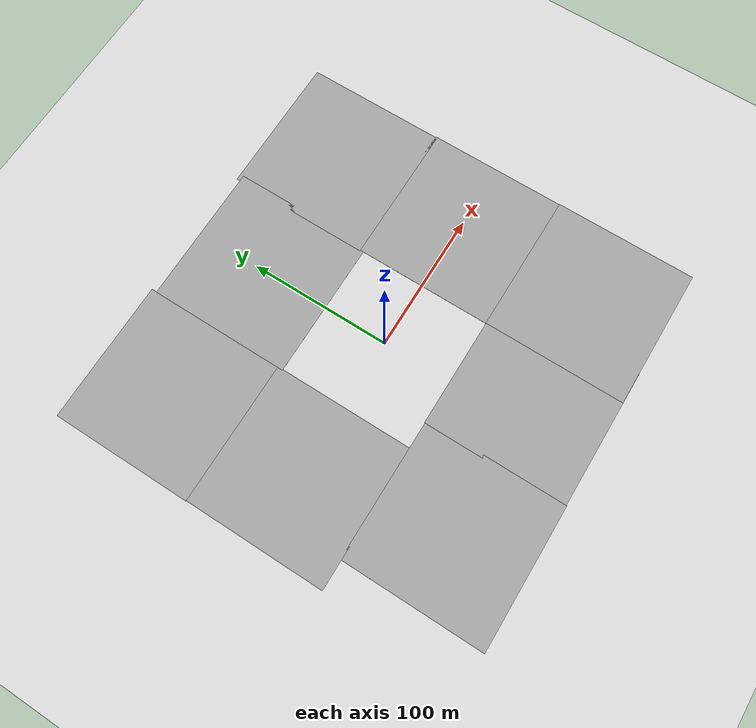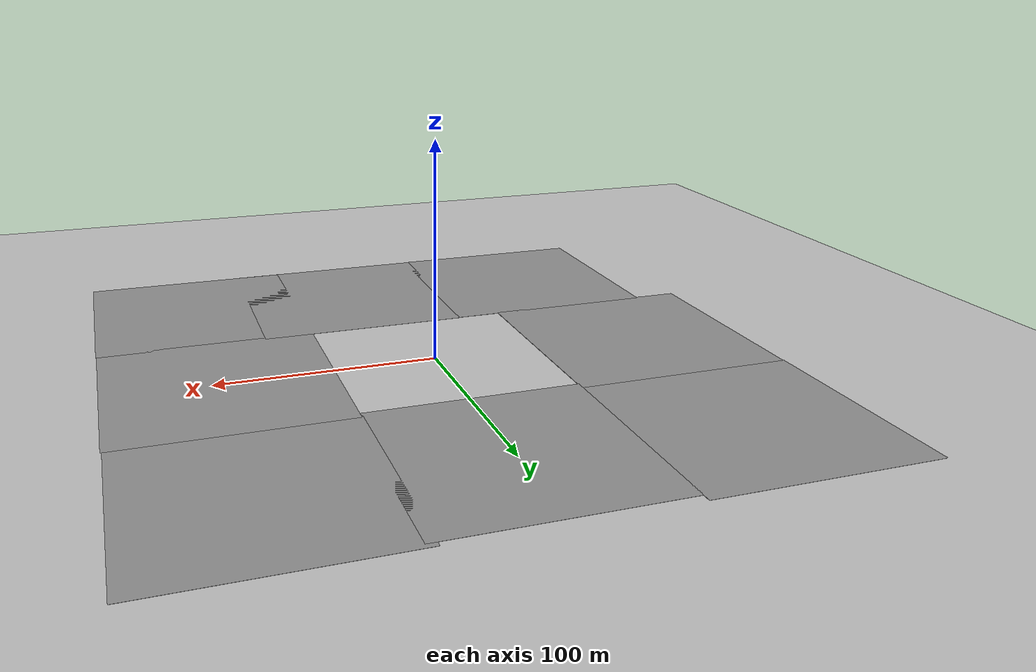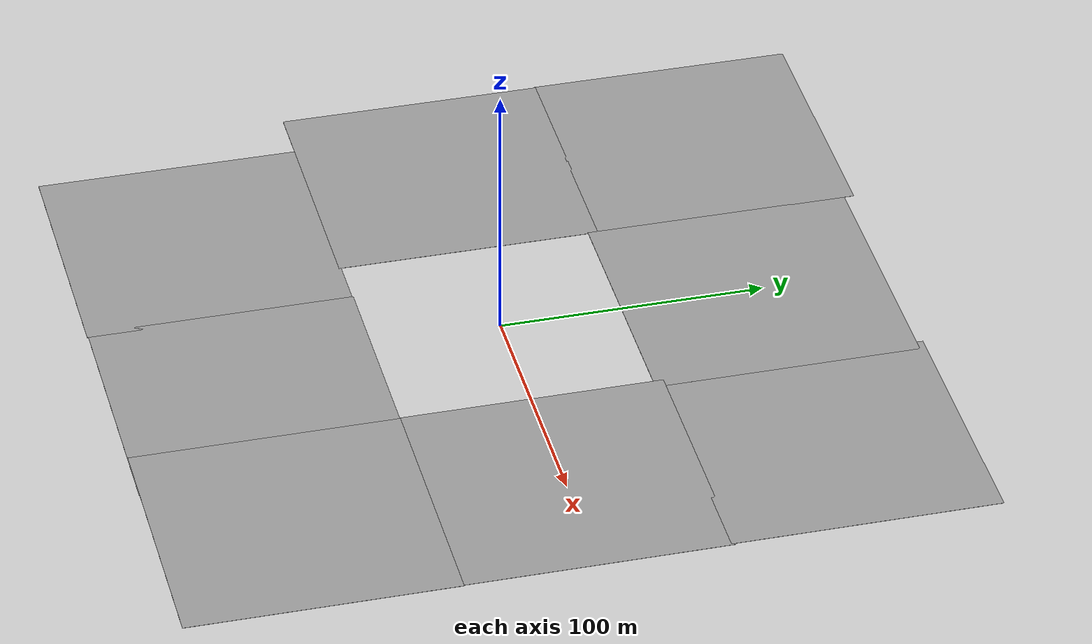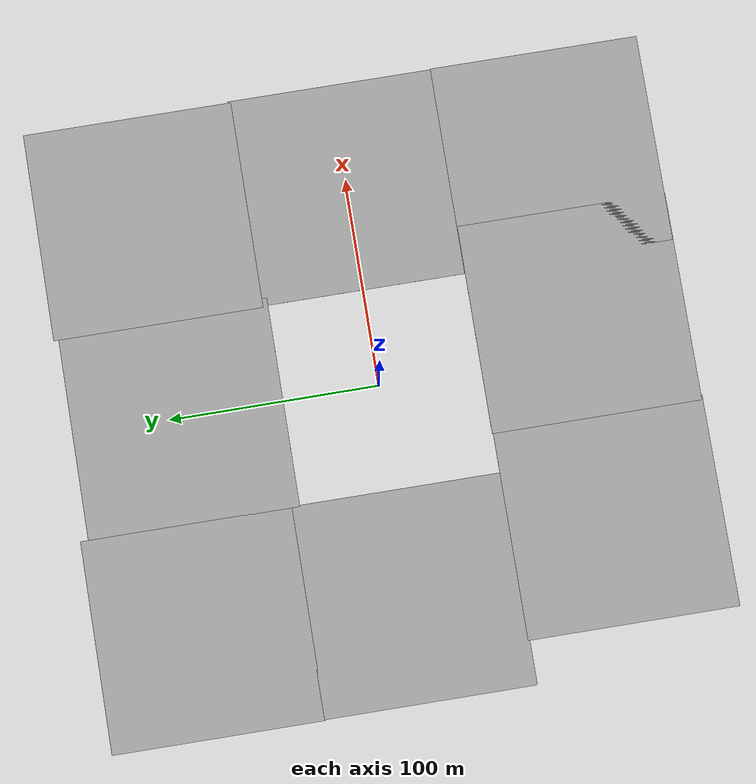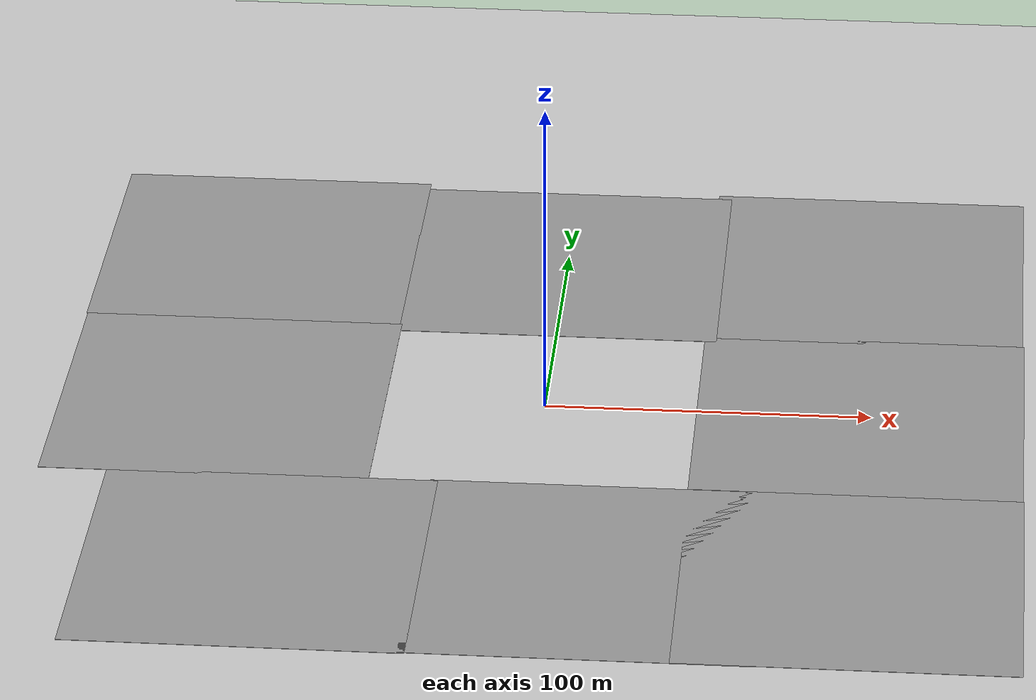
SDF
<sdf version="1.7">
 <world name="default">
  <light name="sun" type="directional">
   <pose>0 0 10 0 -0 0</pose>
   <diffuse>0.8 0.8 0.8 1</diffuse>
   <specular>0.2 0.2 0.2 1</specular>
   <attenuation>
    <range>1000</range>
    <constant>0.9</constant>
    <linear>0.01</linear>
    <quadratic>0.001</quadratic>
   </attenuation>
   <direction>-0.5 0.1 -0.9</direction>
   <spot><inner_angle>0</inner_angle><outer_angle>0</outer_angle><falloff>0</falloff></spot>
  </light>
  <model name="ground_plane">
   <static>1</static>
   <link name="link">
    <collision name="collision">
     <geometry><plane><normal>0 0 1</normal><size>100 100</size></plane></geometry>
     <surface><friction><ode><mu>100</mu><mu2>50</mu2></ode></friction></surface>
    </collision>
    <visual name="visual">
     <cast_shadows>0</cast_shadows>
     <geometry><plane><normal>0 0 1</normal><size>100 100</size></plane></geometry>
     <material>
      <script><uri>file://media/materials/scripts/gazebo.material</uri><name>Gazebo/Grey</name></script>
     </material>
    </visual>
   </link>
  </model>
  <gravity>0 0 -9.8</gravity>
  <magnetic_field>6e-06 2.3e-05 -4.2e-05</magnetic_field>
  <atmosphere type="adiabatic"/>
  <physics type="ode">
   <max_step_size>0.001</max_step_size>
   <real_time_factor>1</real_time_factor>
   <real_time_update_rate>1000</real_time_update_rate>
  </physics>
  <scene><ambient>0.4 0.4 0.4 1</ambient><background>0.7 0.7 0.7 1</background><shadows>1</shadows></scene>
  <audio><device>default</device></audio>
  <spherical_coordinates>
   <surface_model>EARTH_WGS84</surface_model>
   <latitude_deg>0</latitude_deg>
   <longitude_deg>0</longitude_deg>
   <elevation>0</elevation>
   <heading_deg>0</heading_deg>
  </spherical_coordinates>
  <model name="ground_plane_0">
   <static>1</static>
   <link name="link">
    <collision name="collision">
     <geometry><plane><normal>0 0 1</normal><size>100 100</size></plane></geometry>
     <surface><friction><ode><mu>100</mu><mu2>50</mu2></ode></friction></surface>
    </collision>
    <visual name="visual">
     <cast_shadows>0</cast_shadows>
     <geometry><plane><normal>0 0 1</normal><size>100 100</size></plane></geometry>
     <material>
      <script><uri>file://media/materials/scripts/gazebo.material</uri><name>Gazebo/Grey</name></script>
     </material>
    </visual>
   </link>
   <pose>96.4988 -0.367593 0 0 -0 0</pose>
  </model>
  <model name="ground_plane_1">
   <static>1</static>
   <link name="link">
    <collision name="collision">
     <geometry><plane><normal>0 0 1</normal><size>100 100</size></plane></geometry>
     <surface><friction><ode><mu>100</mu><mu2>50</mu2></ode></friction></surface>
    </collision>
    <visual name="visual">
     <cast_shadows>0</cast_shadows>
     <geometry><plane><normal>0 0 1</normal><size>100 100</size></plane></geometry>
     <material>
      <script><uri>file://media/materials/scripts/gazebo.material</uri><name>Gazebo/Grey</name></script>
     </material>
    </visual>
   </link>
   <pose>95.9002 98.1365 0 0 -0 0</pose>
  </model>
  <model name="ground_plane_2">
   <static>1</static>
   <link name="link">
    <collision name="collision">
     <geometry><plane><normal>0 0 1</normal><size>100 100</size></plane></geometry>
     <surface><friction><ode><mu>100</mu><mu2>50</mu2></ode></friction></surface>
    </collision>
    <visual name="visual">
     <cast_shadows>0</cast_shadows>
     <geometry><plane><normal>0 0 1</normal><size>100 100</size></plane></geometry>
     <material>
      <script><uri>file://media/materials/scripts/gazebo.material</uri><name>Gazebo/Grey</name></script>
     </material>
    </visual>
   </link>
   <pose>0.146859 95.7688 0 0 -0 0</pose>
  </model>
  <model name="ground_plane_3">
   <static>1</static>
   <link name="link">
    <collision name="collision">
     <geometry><plane><normal>0 0 1</normal><size>100 100</size></plane></geometry>
     <surface><friction><ode><mu>100</mu><mu2>50</mu2></ode></friction></surface>
    </collision>
    <visual name="visual">
     <cast_shadows>0</cast_shadows>
     <geometry><plane><normal>0 0 1</normal><size>100 100</size></plane></geometry>
     <material>
      <script><uri>file://media/materials/scripts/gazebo.material</uri><name>Gazebo/Grey</name></script>
     </material>
    </visual>
   </link>
   <pose>-99.2277 0.039694 0 0 -0 0</pose>
  </model>
  <model name="ground_plane_4">
   <static>1</static>
   <link name="link">
    <collision name="collision">
     <geometry><plane><normal>0 0 1</normal><size>100 100</size></plane></geometry>
     <surface><friction><ode><mu>100</mu><mu2>50</mu2></ode></friction></surface>
    </collision>
    <visual name="visual">
     <cast_shadows>0</cast_shadows>
     <geometry><plane><normal>0 0 1</normal><size>100 100</size></plane></geometry>
     <material>
      <script><uri>file://media/materials/scripts/gazebo.material</uri><name>Gazebo/Grey</name></script>
     </material>
    </visual>
   </link>
   <pose>-99.6074 99.5189 0 0 -0 0</pose>
  </model>
  <model name="ground_plane_5">
   <static>1</static>
   <link name="link">
    <collision name="collision">
     <geometry><plane><normal>0 0 1</normal><size>100 100</size></plane></geometry>
     <surface><friction><ode><mu>100</mu><mu2>50</mu2></ode></friction></surface>
    </collision>
    <visual name="visual">
     <cast_shadows>0</cast_shadows>
     <geometry><plane><normal>0 0 1</normal><size>100 100</size></plane></geometry>
     <material>
      <script><uri>file://media/materials/scripts/gazebo.material</uri><name>Gazebo/Grey</name></script>
     </material>
    </visual>
   </link>
   <pose>-78.4007 -99.1153 0 0 -0 0</pose>
  </model>
  <model name="ground_plane_6">
   <static>1</static>
   <link name="link">
    <collision name="collision">
     <geometry><plane><normal>0 0 1</normal><size>100 100</size></plane></geometry>
     <surface><friction><ode><mu>100</mu><mu2>50</mu2></ode></friction></surface>
    </collision>
    <visual name="visual">
     <cast_shadows>0</cast_shadows>
     <geometry><plane><normal>0 0 1</normal><size>100 100</size></plane></geometry>
     <material>
      <script><uri>file://media/materials/scripts/gazebo.material</uri><name>Gazebo/Grey</name></script>
     </material>
    </visual>
   </link>
   <pose>19.404 -98.6779 0 0 -0 0</pose>
  </model>
  <model name="ground_plane_7">
   <static>1</static>
   <link name="link">
    <collision name="collision">
     <geometry><plane><normal>0 0 1</normal><size>100 100</size></plane></geometry>
     <surface><friction><ode><mu>100</mu><mu2>50</mu2></ode></friction></surface>
    </collision>
    <visual name="visual">
     <cast_shadows>0</cast_shadows>
     <geometry><plane><normal>0 0 1</normal><size>100 100</size></plane></geometry>
     <material>
      <script><uri>file://media/materials/scripts/gazebo.material</uri><name>Gazebo/Grey</name></script>
     </material>
    </visual>
   </link>
   <pose>96.8237 -98.4787 0 0 -0 0</pose>
  </model>
 </world>
</sdf>
